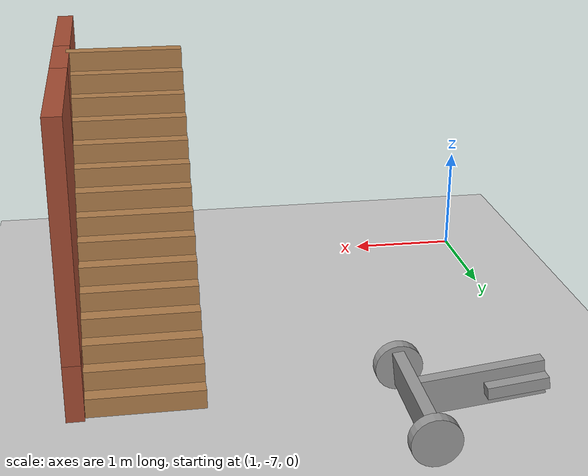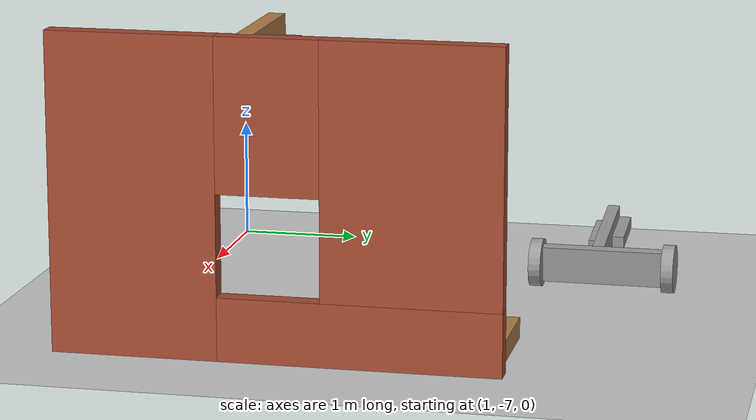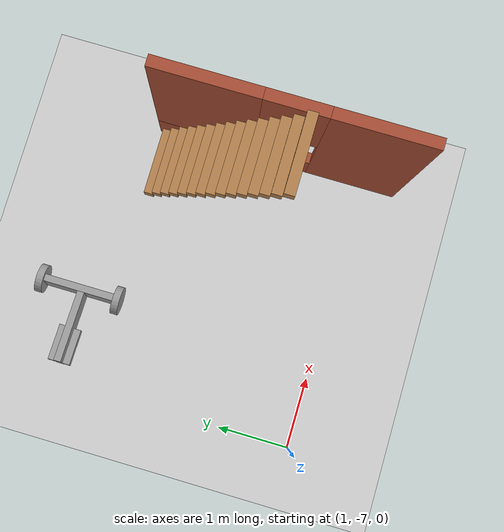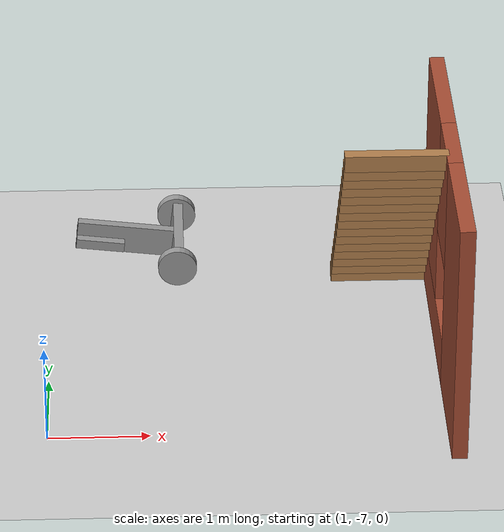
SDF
<sdf version="1.6">
 <world name="default">
  <model name="ground_plane">
   <static>1</static>
   <link name="link">
    <collision name="collision">
     <geometry><plane><normal>0 0 1</normal><size>100 100</size></plane></geometry>
     <surface>
      <contact><collide_bitmask>65535</collide_bitmask></contact>
      <friction><ode><mu>100</mu><mu2>50</mu2></ode></friction>
     </surface>
    </collision>
    <visual name="visual">
     <cast_shadows>0</cast_shadows>
     <geometry><plane><normal>0 0 1</normal><size>100 100</size></plane></geometry>
     <material>
      <script><uri>file://media/materials/scripts/gazebo.material</uri><name>Gazebo/Grey</name></script>
     </material>
    </visual>
   </link>
  </model>
  <model name="Building">
   <link name="Stairs_1">
    <pose>0.046334 -2.64714 0 0 -0 0</pose>
    <visual name="Stairs_1_Visual_3">
     <pose>3.95843 -0.779973 0.583333 0 -0 0</pose>
     <geometry><box><size>1 0.133333 0.166667</size></box></geometry>
     <material>
      <script><uri>file://media/materials/scripts/gazebo.material</uri><name>Gazebo/Wood</name></script>
      <ambient>1 1 1 1</ambient>
      <shader type="pixel"/>
      <diffuse>1 1 1 1</diffuse>
      <specular>0.2 0.2 0.2 1</specular>
      <emissive>0 0 0 1</emissive>
     </material>
     <meta><layer>0</layer></meta>
    </visual>
    <visual name="Stairs_1_Visual_0">
     <pose>3.95843 -0.379973 0.083333 0 -0 0</pose>
     <geometry><box><size>1 0.133333 0.166667</size></box></geometry>
     <material>
      <script><uri>file://media/materials/scripts/gazebo.material</uri><name>Gazebo/Wood</name></script>
      <ambient>1 1 1 1</ambient>
      <shader type="pixel"/>
      <diffuse>1 1 1 1</diffuse>
      <specular>0.2 0.2 0.2 1</specular>
      <emissive>0 0 0 1</emissive>
     </material>
     <meta><layer>0</layer></meta>
    </visual>
    <visual name="Stairs_1_Visual_4">
     <pose>3.95843 -0.913306 0.75 0 -0 0</pose>
     <geometry><box><size>1 0.133333 0.166667</size></box></geometry>
     <material>
      <script><uri>file://media/materials/scripts/gazebo.material</uri><name>Gazebo/Wood</name></script>
      <ambient>1 1 1 1</ambient>
      <shader type="pixel"/>
      <diffuse>1 1 1 1</diffuse>
      <specular>0.2 0.2 0.2 1</specular>
      <emissive>0 0 0 1</emissive>
     </material>
     <meta><layer>0</layer></meta>
    </visual>
    <visual name="Stairs_1_Visual_2">
     <pose>3.95843 -0.646639 0.416667 0 -0 0</pose>
     <geometry><box><size>1 0.133333 0.166667</size></box></geometry>
     <material>
      <script><uri>file://media/materials/scripts/gazebo.material</uri><name>Gazebo/Wood</name></script>
      <ambient>1 1 1 1</ambient>
      <shader type="pixel"/>
      <diffuse>1 1 1 1</diffuse>
      <specular>0.2 0.2 0.2 1</specular>
      <emissive>0 0 0 1</emissive>
     </material>
     <meta><layer>0</layer></meta>
    </visual>
    <visual name="Stairs_1_Visual_5">
     <pose>3.95843 -1.04664 0.916667 0 -0 0</pose>
     <geometry><box><size>1 0.133333 0.166667</size></box></geometry>
     <material>
      <script><uri>file://media/materials/scripts/gazebo.material</uri><name>Gazebo/Wood</name></script>
      <ambient>1 1 1 1</ambient>
      <shader type="pixel"/>
      <diffuse>1 1 1 1</diffuse>
      <specular>0.2 0.2 0.2 1</specular>
      <emissive>0 0 0 1</emissive>
     </material>
     <meta><layer>0</layer></meta>
    </visual>
    <visual name="Stairs_1_Visual_6">
     <pose>3.95843 -1.17997 1.08333 0 -0 0</pose>
     <geometry><box><size>1 0.133333 0.166667</size></box></geometry>
     <material>
      <script><uri>file://media/materials/scripts/gazebo.material</uri><name>Gazebo/Wood</name></script>
      <ambient>1 1 1 1</ambient>
      <shader type="pixel"/>
      <diffuse>1 1 1 1</diffuse>
      <specular>0.2 0.2 0.2 1</specular>
      <emissive>0 0 0 1</emissive>
     </material>
     <meta><layer>0</layer></meta>
    </visual>
    <visual name="Stairs_1_Visual_7">
     <pose>3.95843 -1.31331 1.25 0 -0 0</pose>
     <geometry><box><size>1 0.133333 0.166667</size></box></geometry>
     <material>
      <script><uri>file://media/materials/scripts/gazebo.material</uri><name>Gazebo/Wood</name></script>
      <ambient>1 1 1 1</ambient>
      <shader type="pixel"/>
      <diffuse>1 1 1 1</diffuse>
      <specular>0.2 0.2 0.2 1</specular>
      <emissive>0 0 0 1</emissive>
     </material>
     <meta><layer>0</layer></meta>
    </visual>
    <visual name="Stairs_1_Visual_12">
     <pose>3.95843 -1.97997 2.08333 0 -0 0</pose>
     <geometry><box><size>1 0.133333 0.166667</size></box></geometry>
     <material>
      <script><uri>file://media/materials/scripts/gazebo.material</uri><name>Gazebo/Wood</name></script>
      <ambient>1 1 1 1</ambient>
      <shader type="pixel"/>
      <diffuse>1 1 1 1</diffuse>
      <specular>0.2 0.2 0.2 1</specular>
      <emissive>0 0 0 1</emissive>
     </material>
     <meta><layer>0</layer></meta>
    </visual>
    <visual name="Stairs_1_Visual_13">
     <pose>3.95843 -2.11331 2.25 0 -0 0</pose>
     <geometry><box><size>1 0.133333 0.166667</size></box></geometry>
     <material>
      <script><uri>file://media/materials/scripts/gazebo.material</uri><name>Gazebo/Wood</name></script>
      <ambient>1 1 1 1</ambient>
      <shader type="pixel"/>
      <diffuse>1 1 1 1</diffuse>
      <specular>0.2 0.2 0.2 1</specular>
      <emissive>0 0 0 1</emissive>
     </material>
     <meta><layer>0</layer></meta>
    </visual>
    <visual name="Stairs_1_Visual_14">
     <pose>3.95843 -2.24664 2.41667 0 -0 0</pose>
     <geometry><box><size>1 0.133333 0.166667</size></box></geometry>
     <material>
      <script><uri>file://media/materials/scripts/gazebo.material</uri><name>Gazebo/Wood</name></script>
      <ambient>1 1 1 1</ambient>
      <shader type="pixel"/>
      <diffuse>1 1 1 1</diffuse>
      <specular>0.2 0.2 0.2 1</specular>
      <emissive>0 0 0 1</emissive>
     </material>
     <meta><layer>0</layer></meta>
    </visual>
    <visual name="Stairs_1_Visual_8">
     <pose>3.95843 -1.44664 1.41667 0 -0 0</pose>
     <geometry><box><size>1 0.133333 0.166667</size></box></geometry>
     <material>
      <script><uri>file://media/materials/scripts/gazebo.material</uri><name>Gazebo/Wood</name></script>
      <ambient>1 1 1 1</ambient>
      <shader type="pixel"/>
      <diffuse>1 1 1 1</diffuse>
      <specular>0.2 0.2 0.2 1</specular>
      <emissive>0 0 0 1</emissive>
     </material>
     <meta><layer>0</layer></meta>
    </visual>
    <visual name="Stairs_1_Visual_9">
     <pose>3.95843 -1.57997 1.58333 0 -0 0</pose>
     <geometry><box><size>1 0.133333 0.166667</size></box></geometry>
     <material>
      <script><uri>file://media/materials/scripts/gazebo.material</uri><name>Gazebo/Wood</name></script>
      <ambient>1 1 1 1</ambient>
      <shader type="pixel"/>
      <diffuse>1 1 1 1</diffuse>
      <specular>0.2 0.2 0.2 1</specular>
      <emissive>0 0 0 1</emissive>
     </material>
     <meta><layer>0</layer></meta>
    </visual>
    <visual name="Stairs_1_Visual_10">
     <pose>3.95843 -1.71331 1.75 0 -0 0</pose>
     <geometry><box><size>1 0.133333 0.166667</size></box></geometry>
     <material>
      <script><uri>file://media/materials/scripts/gazebo.material</uri><name>Gazebo/Wood</name></script>
      <ambient>1 1 1 1</ambient>
      <shader type="pixel"/>
      <diffuse>1 1 1 1</diffuse>
      <specular>0.2 0.2 0.2 1</specular>
      <emissive>0 0 0 1</emissive>
     </material>
     <meta><layer>0</layer></meta>
    </visual>
    <visual name="Stairs_1_Visual_11">
     <pose>3.95843 -1.84664 1.91667 0 -0 0</pose>
     <geometry><box><size>1 0.133333 0.166667</size></box></geometry>
     <material>
      <script><uri>file://media/materials/scripts/gazebo.material</uri><name>Gazebo/Wood</name></script>
      <ambient>1 1 1 1</ambient>
      <shader type="pixel"/>
      <diffuse>1 1 1 1</diffuse>
      <specular>0.2 0.2 0.2 1</specular>
      <emissive>0 0 0 1</emissive>
     </material>
     <meta><layer>0</layer></meta>
    </visual>
    <visual name="Stairs_1_Visual_1">
     <pose>3.95843 -0.513306 0.25 0 -0 0</pose>
     <geometry><box><size>1 0.133333 0.166667</size></box></geometry>
     <material>
      <script><uri>file://media/materials/scripts/gazebo.material</uri><name>Gazebo/Wood</name></script>
      <ambient>1 1 1 1</ambient>
      <shader type="pixel"/>
      <diffuse>1 1 1 1</diffuse>
      <specular>0.2 0.2 0.2 1</specular>
      <emissive>0 0 0 1</emissive>
     </material>
     <meta><layer>0</layer></meta>
    </visual>
    <collision name="Stairs_1_Collision_4">
     <pose>3.95843 -0.913306 0.75 0 -0 0</pose>
     <geometry><box><size>1 0.133333 0.166667</size></box></geometry>
     <surface>
      <friction>
       <ode><mu>1</mu><mu2>1</mu2><fdir1>0 0 0</fdir1><slip1>0</slip1><slip2>0</slip2></ode>
       <torsional>
        <coefficient>1</coefficient>
        <patch_radius>0</patch_radius>
        <surface_radius>0</surface_radius>
        <use_patch_radius>1</use_patch_radius>
        <ode><slip>0</slip></ode>
       </torsional>
      </friction>
      <bounce><restitution_coefficient>0</restitution_coefficient><threshold>1e+06</threshold></bounce>
      <contact>
       <collide_without_contact>0</collide_without_contact>
       <collide_without_contact_bitmask>1</collide_without_contact_bitmask>
       <collide_bitmask>1</collide_bitmask>
       <ode>
        <soft_cfm>0</soft_cfm>
        <soft_erp>0.2</soft_erp>
        <kp>1e+13</kp>
        <kd>1</kd>
        <max_vel>0.01</max_vel>
        <min_depth>0</min_depth>
       </ode>
       <bullet>
        <split_impulse>1</split_impulse>
        <split_impulse_penetration_threshold>-0.01</split_impulse_penetration_threshold>
        <soft_cfm>0</soft_cfm>
        <soft_erp>0.2</soft_erp>
        <kp>1e+13</kp>
        <kd>1</kd>
       </bullet>
      </contact>
     </surface>
    </collision>
    <collision name="Stairs_1_Collision_0">
     <pose>3.95843 -0.379973 0.083333 0 -0 0</pose>
     <geometry><box><size>1 0.133333 0.166667</size></box></geometry>
     <surface>
      <friction>
       <ode><mu>1</mu><mu2>1</mu2><fdir1>0 0 0</fdir1><slip1>0</slip1><slip2>0</slip2></ode>
       <torsional>
        <coefficient>1</coefficient>
        <patch_radius>0</patch_radius>
        <surface_radius>0</surface_radius>
        <use_patch_radius>1</use_patch_radius>
        <ode><slip>0</slip></ode>
       </torsional>
      </friction>
      <bounce><restitution_coefficient>0</restitution_coefficient><threshold>1e+06</threshold></bounce>
      <contact>
       <collide_without_contact>0</collide_without_contact>
       <collide_without_contact_bitmask>1</collide_without_contact_bitmask>
       <collide_bitmask>1</collide_bitmask>
       <ode>
        <soft_cfm>0</soft_cfm>
        <soft_erp>0.2</soft_erp>
        <kp>1e+13</kp>
        <kd>1</kd>
        <max_vel>0.01</max_vel>
        <min_depth>0</min_depth>
       </ode>
       <bullet>
        <split_impulse>1</split_impulse>
        <split_impulse_penetration_threshold>-0.01</split_impulse_penetration_threshold>
        <soft_cfm>0</soft_cfm>
        <soft_erp>0.2</soft_erp>
        <kp>1e+13</kp>
        <kd>1</kd>
       </bullet>
      </contact>
     </surface>
    </collision>
    <collision name="Stairs_1_Collision_3">
     <pose>3.95843 -0.779973 0.583333 0 -0 0</pose>
     <geometry><box><size>1 0.133333 0.166667</size></box></geometry>
     <surface>
      <friction>
       <ode><mu>1</mu><mu2>1</mu2><fdir1>0 0 0</fdir1><slip1>0</slip1><slip2>0</slip2></ode>
       <torsional>
        <coefficient>1</coefficient>
        <patch_radius>0</patch_radius>
        <surface_radius>0</surface_radius>
        <use_patch_radius>1</use_patch_radius>
        <ode><slip>0</slip></ode>
       </torsional>
      </friction>
      <bounce><restitution_coefficient>0</restitution_coefficient><threshold>1e+06</threshold></bounce>
      <contact>
       <collide_without_contact>0</collide_without_contact>
       <collide_without_contact_bitmask>1</collide_without_contact_bitmask>
       <collide_bitmask>1</collide_bitmask>
       <ode>
        <soft_cfm>0</soft_cfm>
        <soft_erp>0.2</soft_erp>
        <kp>1e+13</kp>
        <kd>1</kd>
        <max_vel>0.01</max_vel>
        <min_depth>0</min_depth>
       </ode>
       <bullet>
        <split_impulse>1</split_impulse>
        <split_impulse_penetration_threshold>-0.01</split_impulse_penetration_threshold>
        <soft_cfm>0</soft_cfm>
        <soft_erp>0.2</soft_erp>
        <kp>1e+13</kp>
        <kd>1</kd>
       </bullet>
      </contact>
     </surface>
    </collision>
    <collision name="Stairs_1_Collision_1">
     <pose>3.95843 -0.513306 0.25 0 -0 0</pose>
     <geometry><box><size>1 0.133333 0.166667</size></box></geometry>
     <surface>
      <friction>
       <ode><mu>1</mu><mu2>1</mu2><fdir1>0 0 0</fdir1><slip1>0</slip1><slip2>0</slip2></ode>
       <torsional>
        <coefficient>1</coefficient>
        <patch_radius>0</patch_radius>
        <surface_radius>0</surface_radius>
        <use_patch_radius>1</use_patch_radius>
        <ode><slip>0</slip></ode>
       </torsional>
      </friction>
      <bounce><restitution_coefficient>0</restitution_coefficient><threshold>1e+06</threshold></bounce>
      <contact>
       <collide_without_contact>0</collide_without_contact>
       <collide_without_contact_bitmask>1</collide_without_contact_bitmask>
       <collide_bitmask>1</collide_bitmask>
       <ode>
        <soft_cfm>0</soft_cfm>
        <soft_erp>0.2</soft_erp>
        <kp>1e+13</kp>
        <kd>1</kd>
        <max_vel>0.01</max_vel>
        <min_depth>0</min_depth>
       </ode>
       <bullet>
        <split_impulse>1</split_impulse>
        <split_impulse_penetration_threshold>-0.01</split_impulse_penetration_threshold>
        <soft_cfm>0</soft_cfm>
        <soft_erp>0.2</soft_erp>
        <kp>1e+13</kp>
        <kd>1</kd>
       </bullet>
      </contact>
     </surface>
    </collision>
    <collision name="Stairs_1_Collision_2">
     <pose>3.95843 -0.646639 0.416667 0 -0 0</pose>
     <geometry><box><size>1 0.133333 0.166667</size></box></geometry>
     <surface>
      <friction>
       <ode><mu>1</mu><mu2>1</mu2><fdir1>0 0 0</fdir1><slip1>0</slip1><slip2>0</slip2></ode>
       <torsional>
        <coefficient>1</coefficient>
        <patch_radius>0</patch_radius>
        <surface_radius>0</surface_radius>
        <use_patch_radius>1</use_patch_radius>
        <ode><slip>0</slip></ode>
       </torsional>
      </friction>
      <bounce><restitution_coefficient>0</restitution_coefficient><threshold>1e+06</threshold></bounce>
      <contact>
       <collide_without_contact>0</collide_without_contact>
       <collide_without_contact_bitmask>1</collide_without_contact_bitmask>
       <collide_bitmask>1</collide_bitmask>
       <ode>
        <soft_cfm>0</soft_cfm>
        <soft_erp>0.2</soft_erp>
        <kp>1e+13</kp>
        <kd>1</kd>
        <max_vel>0.01</max_vel>
        <min_depth>0</min_depth>
       </ode>
       <bullet>
        <split_impulse>1</split_impulse>
        <split_impulse_penetration_threshold>-0.01</split_impulse_penetration_threshold>
        <soft_cfm>0</soft_cfm>
        <soft_erp>0.2</soft_erp>
        <kp>1e+13</kp>
        <kd>1</kd>
       </bullet>
      </contact>
     </surface>
    </collision>
    <collision name="Stairs_1_Collision_5">
     <pose>3.95843 -1.04664 0.916667 0 -0 0</pose>
     <geometry><box><size>1 0.133333 0.166667</size></box></geometry>
     <surface>
      <friction>
       <ode><mu>1</mu><mu2>1</mu2><fdir1>0 0 0</fdir1><slip1>0</slip1><slip2>0</slip2></ode>
       <torsional>
        <coefficient>1</coefficient>
        <patch_radius>0</patch_radius>
        <surface_radius>0</surface_radius>
        <use_patch_radius>1</use_patch_radius>
        <ode><slip>0</slip></ode>
       </torsional>
      </friction>
      <bounce><restitution_coefficient>0</restitution_coefficient><threshold>1e+06</threshold></bounce>
      <contact>
       <collide_without_contact>0</collide_without_contact>
       <collide_without_contact_bitmask>1</collide_without_contact_bitmask>
       <collide_bitmask>1</collide_bitmask>
       <ode>
        <soft_cfm>0</soft_cfm>
        <soft_erp>0.2</soft_erp>
        <kp>1e+13</kp>
        <kd>1</kd>
        <max_vel>0.01</max_vel>
        <min_depth>0</min_depth>
       </ode>
       <bullet>
        <split_impulse>1</split_impulse>
        <split_impulse_penetration_threshold>-0.01</split_impulse_penetration_threshold>
        <soft_cfm>0</soft_cfm>
        <soft_erp>0.2</soft_erp>
        <kp>1e+13</kp>
        <kd>1</kd>
       </bullet>
      </contact>
     </surface>
    </collision>
    <collision name="Stairs_1_Collision_6">
     <pose>3.95843 -1.17997 1.08333 0 -0 0</pose>
     <geometry><box><size>1 0.133333 0.166667</size></box></geometry>
     <surface>
      <friction>
       <ode><mu>1</mu><mu2>1</mu2><fdir1>0 0 0</fdir1><slip1>0</slip1><slip2>0</slip2></ode>
       <torsional>
        <coefficient>1</coefficient>
        <patch_radius>0</patch_radius>
        <surface_radius>0</surface_radius>
        <use_patch_radius>1</use_patch_radius>
        <ode><slip>0</slip></ode>
       </torsional>
      </friction>
      <bounce><restitution_coefficient>0</restitution_coefficient><threshold>1e+06</threshold></bounce>
      <contact>
       <collide_without_contact>0</collide_without_contact>
       <collide_without_contact_bitmask>1</collide_without_contact_bitmask>
       <collide_bitmask>1</collide_bitmask>
       <ode>
        <soft_cfm>0</soft_cfm>
        <soft_erp>0.2</soft_erp>
        <kp>1e+13</kp>
        <kd>1</kd>
        <max_vel>0.01</max_vel>
        <min_depth>0</min_depth>
       </ode>
       <bullet>
        <split_impulse>1</split_impulse>
        <split_impulse_penetration_threshold>-0.01</split_impulse_penetration_threshold>
        <soft_cfm>0</soft_cfm>
        <soft_erp>0.2</soft_erp>
        <kp>1e+13</kp>
        <kd>1</kd>
       </bullet>
      </contact>
     </surface>
    </collision>
    <collision name="Stairs_1_Collision_7">
     <pose>3.95843 -1.31331 1.25 0 -0 0</pose>
     <geometry><box><size>1 0.133333 0.166667</size></box></geometry>
     <surface>
      <friction>
       <ode><mu>1</mu><mu2>1</mu2><fdir1>0 0 0</fdir1><slip1>0</slip1><slip2>0</slip2></ode>
       <torsional>
        <coefficient>1</coefficient>
        <patch_radius>0</patch_radius>
        <surface_radius>0</surface_radius>
        <use_patch_radius>1</use_patch_radius>
        <ode><slip>0</slip></ode>
       </torsional>
      </friction>
      <bounce><restitution_coefficient>0</restitution_coefficient><threshold>1e+06</threshold></bounce>
      <contact>
       <collide_without_contact>0</collide_without_contact>
       <collide_without_contact_bitmask>1</collide_without_contact_bitmask>
       <collide_bitmask>1</collide_bitmask>
       <ode>
        <soft_cfm>0</soft_cfm>
        <soft_erp>0.2</soft_erp>
        <kp>1e+13</kp>
        <kd>1</kd>
        <max_vel>0.01</max_vel>
        <min_depth>0</min_depth>
       </ode>
       <bullet>
        <split_impulse>1</split_impulse>
        <split_impulse_penetration_threshold>-0.01</split_impulse_penetration_threshold>
        <soft_cfm>0</soft_cfm>
        <soft_erp>0.2</soft_erp>
        <kp>1e+13</kp>
        <kd>1</kd>
       </bullet>
      </contact>
     </surface>
    </collision>
    <collision name="Stairs_1_Collision_8">
     <pose>3.95843 -1.44664 1.41667 0 -0 0</pose>
     <geometry><box><size>1 0.133333 0.166667</size></box></geometry>
     <surface>
      <friction>
       <ode><mu>1</mu><mu2>1</mu2><fdir1>0 0 0</fdir1><slip1>0</slip1><slip2>0</slip2></ode>
       <torsional>
        <coefficient>1</coefficient>
        <patch_radius>0</patch_radius>
        <surface_radius>0</surface_radius>
        <use_patch_radius>1</use_patch_radius>
        <ode><slip>0</slip></ode>
       </torsional>
      </friction>
      <bounce><restitution_coefficient>0</restitution_coefficient><threshold>1e+06</threshold></bounce>
      <contact>
       <collide_without_contact>0</collide_without_contact>
       <collide_without_contact_bitmask>1</collide_without_contact_bitmask>
       <collide_bitmask>1</collide_bitmask>
       <ode>
        <soft_cfm>0</soft_cfm>
        <soft_erp>0.2</soft_erp>
        <kp>1e+13</kp>
        <kd>1</kd>
        <max_vel>0.01</max_vel>
        <min_depth>0</min_depth>
       </ode>
       <bullet>
        <split_impulse>1</split_impulse>
        <split_impulse_penetration_threshold>-0.01</split_impulse_penetration_threshold>
        <soft_cfm>0</soft_cfm>
        <soft_erp>0.2</soft_erp>
        <kp>1e+13</kp>
        <kd>1</kd>
       </bullet>
      </contact>
     </surface>
    </collision>
    <collision name="Stairs_1_Collision_9">
     <pose>3.95843 -1.57997 1.58333 0 -0 0</pose>
     <geometry><box><size>1 0.133333 0.166667</size></box></geometry>
     <surface>
      <friction>
       <ode><mu>1</mu><mu2>1</mu2><fdir1>0 0 0</fdir1><slip1>0</slip1><slip2>0</slip2></ode>
       <torsional>
        <coefficient>1</coefficient>
        <patch_radius>0</patch_radius>
        <surface_radius>0</surface_radius>
        <use_patch_radius>1</use_patch_radius>
        <ode><slip>0</slip></ode>
       </torsional>
      </friction>
      <bounce><restitution_coefficient>0</restitution_coefficient><threshold>1e+06</threshold></bounce>
      <contact>
       <collide_without_contact>0</collide_without_contact>
       <collide_without_contact_bitmask>1</collide_without_contact_bitmask>
       <collide_bitmask>1</collide_bitmask>
       <ode>
        <soft_cfm>0</soft_cfm>
        <soft_erp>0.2</soft_erp>
        <kp>1e+13</kp>
        <kd>1</kd>
        <max_vel>0.01</max_vel>
        <min_depth>0</min_depth>
       </ode>
       <bullet>
        <split_impulse>1</split_impulse>
        <split_impulse_penetration_threshold>-0.01</split_impulse_penetration_threshold>
        <soft_cfm>0</soft_cfm>
        <soft_erp>0.2</soft_erp>
        <kp>1e+13</kp>
        <kd>1</kd>
       </bullet>
      </contact>
     </surface>
    </collision>
    <collision name="Stairs_1_Collision_10">
     <pose>3.95843 -1.71331 1.75 0 -0 0</pose>
     <geometry><box><size>1 0.133333 0.166667</size></box></geometry>
     <surface>
      <friction>
       <ode><mu>1</mu><mu2>1</mu2><fdir1>0 0 0</fdir1><slip1>0</slip1><slip2>0</slip2></ode>
       <torsional>
        <coefficient>1</coefficient>
        <patch_radius>0</patch_radius>
        <surface_radius>0</surface_radius>
        <use_patch_radius>1</use_patch_radius>
        <ode><slip>0</slip></ode>
       </torsional>
      </friction>
      <bounce><restitution_coefficient>0</restitution_coefficient><threshold>1e+06</threshold></bounce>
      <contact>
       <collide_without_contact>0</collide_without_contact>
       <collide_without_contact_bitmask>1</collide_without_contact_bitmask>
       <collide_bitmask>1</collide_bitmask>
       <ode>
        <soft_cfm>0</soft_cfm>
        <soft_erp>0.2</soft_erp>
        <kp>1e+13</kp>
        <kd>1</kd>
        <max_vel>0.01</max_vel>
        <min_depth>0</min_depth>
       </ode>
       <bullet>
        <split_impulse>1</split_impulse>
        <split_impulse_penetration_threshold>-0.01</split_impulse_penetration_threshold>
        <soft_cfm>0</soft_cfm>
        <soft_erp>0.2</soft_erp>
        <kp>1e+13</kp>
        <kd>1</kd>
       </bullet>
      </contact>
     </surface>
    </collision>
    <collision name="Stairs_1_Collision_11">
     <pose>3.95843 -1.84664 1.91667 0 -0 0</pose>
     <geometry><box><size>1 0.133333 0.166667</size></box></geometry>
     <surface>
      <friction>
       <ode><mu>1</mu><mu2>1</mu2><fdir1>0 0 0</fdir1><slip1>0</slip1><slip2>0</slip2></ode>
       <torsional>
        <coefficient>1</coefficient>
        <patch_radius>0</patch_radius>
        <surface_radius>0</surface_radius>
        <use_patch_radius>1</use_patch_radius>
        <ode><slip>0</slip></ode>
       </torsional>
      </friction>
      <bounce><restitution_coefficient>0</restitution_coefficient><threshold>1e+06</threshold></bounce>
      <contact>
       <collide_without_contact>0</collide_without_contact>
       <collide_without_contact_bitmask>1</collide_without_contact_bitmask>
       <collide_bitmask>1</collide_bitmask>
       <ode>
        <soft_cfm>0</soft_cfm>
        <soft_erp>0.2</soft_erp>
        <kp>1e+13</kp>
        <kd>1</kd>
        <max_vel>0.01</max_vel>
        <min_depth>0</min_depth>
       </ode>
       <bullet>
        <split_impulse>1</split_impulse>
        <split_impulse_penetration_threshold>-0.01</split_impulse_penetration_threshold>
        <soft_cfm>0</soft_cfm>
        <soft_erp>0.2</soft_erp>
        <kp>1e+13</kp>
        <kd>1</kd>
       </bullet>
      </contact>
     </surface>
    </collision>
    <collision name="Stairs_1_Collision_13">
     <pose>3.95843 -2.11331 2.25 0 -0 0</pose>
     <geometry><box><size>1 0.133333 0.166667</size></box></geometry>
     <surface>
      <friction>
       <ode><mu>1</mu><mu2>1</mu2><fdir1>0 0 0</fdir1><slip1>0</slip1><slip2>0</slip2></ode>
       <torsional>
        <coefficient>1</coefficient>
        <patch_radius>0</patch_radius>
        <surface_radius>0</surface_radius>
        <use_patch_radius>1</use_patch_radius>
        <ode><slip>0</slip></ode>
       </torsional>
      </friction>
      <bounce><restitution_coefficient>0</restitution_coefficient><threshold>1e+06</threshold></bounce>
      <contact>
       <collide_without_contact>0</collide_without_contact>
       <collide_without_contact_bitmask>1</collide_without_contact_bitmask>
       <collide_bitmask>1</collide_bitmask>
       <ode>
        <soft_cfm>0</soft_cfm>
        <soft_erp>0.2</soft_erp>
        <kp>1e+13</kp>
        <kd>1</kd>
        <max_vel>0.01</max_vel>
        <min_depth>0</min_depth>
       </ode>
       <bullet>
        <split_impulse>1</split_impulse>
        <split_impulse_penetration_threshold>-0.01</split_impulse_penetration_threshold>
        <soft_cfm>0</soft_cfm>
        <soft_erp>0.2</soft_erp>
        <kp>1e+13</kp>
        <kd>1</kd>
       </bullet>
      </contact>
     </surface>
    </collision>
    <collision name="Stairs_1_Collision_12">
     <pose>3.95843 -1.97997 2.08333 0 -0 0</pose>
     <geometry><box><size>1 0.133333 0.166667</size></box></geometry>
     <surface>
      <friction>
       <ode><mu>1</mu><mu2>1</mu2><fdir1>0 0 0</fdir1><slip1>0</slip1><slip2>0</slip2></ode>
       <torsional>
        <coefficient>1</coefficient>
        <patch_radius>0</patch_radius>
        <surface_radius>0</surface_radius>
        <use_patch_radius>1</use_patch_radius>
        <ode><slip>0</slip></ode>
       </torsional>
      </friction>
      <bounce><restitution_coefficient>0</restitution_coefficient><threshold>1e+06</threshold></bounce>
      <contact>
       <collide_without_contact>0</collide_without_contact>
       <collide_without_contact_bitmask>1</collide_without_contact_bitmask>
       <collide_bitmask>1</collide_bitmask>
       <ode>
        <soft_cfm>0</soft_cfm>
        <soft_erp>0.2</soft_erp>
        <kp>1e+13</kp>
        <kd>1</kd>
        <max_vel>0.01</max_vel>
        <min_depth>0</min_depth>
       </ode>
       <bullet>
        <split_impulse>1</split_impulse>
        <split_impulse_penetration_threshold>-0.01</split_impulse_penetration_threshold>
        <soft_cfm>0</soft_cfm>
        <soft_erp>0.2</soft_erp>
        <kp>1e+13</kp>
        <kd>1</kd>
       </bullet>
      </contact>
     </surface>
    </collision>
    <collision name="Stairs_1_Collision_14">
     <pose>3.95843 -2.24664 2.41667 0 -0 0</pose>
     <geometry><box><size>1 0.133333 0.166667</size></box></geometry>
     <surface>
      <friction>
       <ode><mu>1</mu><mu2>1</mu2><fdir1>0 0 0</fdir1><slip1>0</slip1><slip2>0</slip2></ode>
       <torsional>
        <coefficient>1</coefficient>
        <patch_radius>0</patch_radius>
        <surface_radius>0</surface_radius>
        <use_patch_radius>1</use_patch_radius>
        <ode><slip>0</slip></ode>
       </torsional>
      </friction>
      <bounce><restitution_coefficient>0</restitution_coefficient><threshold>1e+06</threshold></bounce>
      <contact>
       <collide_without_contact>0</collide_without_contact>
       <collide_without_contact_bitmask>1</collide_without_contact_bitmask>
       <collide_bitmask>1</collide_bitmask>
       <ode>
        <soft_cfm>0</soft_cfm>
        <soft_erp>0.2</soft_erp>
        <kp>1e+13</kp>
        <kd>1</kd>
        <max_vel>0.01</max_vel>
        <min_depth>0</min_depth>
       </ode>
       <bullet>
        <split_impulse>1</split_impulse>
        <split_impulse_penetration_threshold>-0.01</split_impulse_penetration_threshold>
        <soft_cfm>0</soft_cfm>
        <soft_erp>0.2</soft_erp>
        <kp>1e+13</kp>
        <kd>1</kd>
       </bullet>
      </contact>
     </surface>
    </collision>
   </link>
   <link name="Wall_2_clone">
    <pose>4.54998 -4.66312 0 0 -0 1.5708</pose>
    <inertial>
     <mass>1</mass>
     <inertia><ixx>1</ixx><ixy>0</ixy><ixz>0</ixz><iyy>1</iyy><iyz>0</iyz><izz>1</izz></inertia>
    </inertial>
    <visual name="Wall_2_Visual_3">
     <pose>-0.03931 0 1.9 0 -0 0</pose>
     <geometry><box><size>0.8 0.15 1.2</size></box></geometry>
     <material>
      <script><uri>file://media/materials/scripts/gazebo.material</uri><name>Gazebo/Bricks</name></script>
      <ambient>1 1 1 1</ambient>
      <shader type="pixel"><normal_map>__default__</normal_map></shader>
      <diffuse>1 1 1 1</diffuse>
      <specular>0.2 0.2 0.2 1</specular>
      <emissive>0 0 0 1</emissive>
     </material>
     <meta><layer>0</layer></meta>
    </visual>
    <visual name="Wall_2_Visual_2">
     <pose>1.05534 0 1.5 0 -0 0</pose>
     <geometry><box><size>1.38931 0.15 2</size></box></geometry>
     <material>
      <script><uri>file://media/materials/scripts/gazebo.material</uri><name>Gazebo/Bricks</name></script>
      <ambient>1 1 1 1</ambient>
      <shader type="pixel"><normal_map>__default__</normal_map></shader>
      <diffuse>1 1 1 1</diffuse>
      <specular>0.2 0.2 0.2 1</specular>
      <emissive>0 0 0 1</emissive>
     </material>
     <meta><layer>0</layer></meta>
    </visual>
    <visual name="Wall_2_Visual_1">
     <pose>0.655345 0 0.25 0 -0 0</pose>
     <geometry><box><size>2.18931 0.15 0.5</size></box></geometry>
     <material>
      <script><uri>file://media/materials/scripts/gazebo.material</uri><name>Gazebo/Bricks</name></script>
      <ambient>1 1 1 1</ambient>
      <shader type="pixel"><normal_map>__default__</normal_map></shader>
      <diffuse>1 1 1 1</diffuse>
      <specular>0.2 0.2 0.2 1</specular>
      <emissive>0 0 0 1</emissive>
     </material>
     <meta><layer>0</layer></meta>
    </visual>
    <visual name="Wall_2_Visual_0">
     <pose>-1.09465 0 1.25 0 -0 0</pose>
     <geometry><box><size>1.31069 0.15 2.5</size></box></geometry>
     <material>
      <script><uri>file://media/materials/scripts/gazebo.material</uri><name>Gazebo/Bricks</name></script>
      <ambient>1 1 1 1</ambient>
      <shader type="pixel"><normal_map>__default__</normal_map></shader>
      <diffuse>1 1 1 1</diffuse>
      <specular>0.2 0.2 0.2 1</specular>
      <emissive>0 0 0 1</emissive>
     </material>
     <meta><layer>0</layer></meta>
    </visual>
    <collision name="Wall_2_Collision_3">
     <pose>-0.03931 0 1.9 0 -0 0</pose>
     <geometry><box><size>0.8 0.15 1.2</size></box></geometry>
     <surface>
      <friction>
       <ode><mu>1</mu><mu2>1</mu2><fdir1>0 0 0</fdir1><slip1>0</slip1><slip2>0</slip2></ode>
       <torsional>
        <coefficient>1</coefficient>
        <patch_radius>0</patch_radius>
        <surface_radius>0</surface_radius>
        <use_patch_radius>1</use_patch_radius>
        <ode><slip>0</slip></ode>
       </torsional>
      </friction>
      <bounce><restitution_coefficient>0</restitution_coefficient><threshold>1e+06</threshold></bounce>
      <contact>
       <collide_without_contact>0</collide_without_contact>
       <collide_without_contact_bitmask>1</collide_without_contact_bitmask>
       <collide_bitmask>1</collide_bitmask>
       <ode>
        <soft_cfm>0</soft_cfm>
        <soft_erp>0.2</soft_erp>
        <kp>1e+13</kp>
        <kd>1</kd>
        <max_vel>0.01</max_vel>
        <min_depth>0</min_depth>
       </ode>
       <bullet>
        <split_impulse>1</split_impulse>
        <split_impulse_penetration_threshold>-0.01</split_impulse_penetration_threshold>
        <soft_cfm>0</soft_cfm>
        <soft_erp>0.2</soft_erp>
        <kp>1e+13</kp>
        <kd>1</kd>
       </bullet>
      </contact>
     </surface>
    </collision>
    <collision name="Wall_2_Collision_1">
     <pose>0.655345 0 0.25 0 -0 0</pose>
     <geometry><box><size>2.18931 0.15 0.5</size></box></geometry>
     <surface>
      <friction>
       <ode><mu>1</mu><mu2>1</mu2><fdir1>0 0 0</fdir1><slip1>0</slip1><slip2>0</slip2></ode>
       <torsional>
        <coefficient>1</coefficient>
        <patch_radius>0</patch_radius>
        <surface_radius>0</surface_radius>
        <use_patch_radius>1</use_patch_radius>
        <ode><slip>0</slip></ode>
       </torsional>
      </friction>
      <bounce><restitution_coefficient>0</restitution_coefficient><threshold>1e+06</threshold></bounce>
      <contact>
       <collide_without_contact>0</collide_without_contact>
       <collide_without_contact_bitmask>1</collide_without_contact_bitmask>
       <collide_bitmask>1</collide_bitmask>
       <ode>
        <soft_cfm>0</soft_cfm>
        <soft_erp>0.2</soft_erp>
        <kp>1e+13</kp>
        <kd>1</kd>
        <max_vel>0.01</max_vel>
        <min_depth>0</min_depth>
       </ode>
       <bullet>
        <split_impulse>1</split_impulse>
        <split_impulse_penetration_threshold>-0.01</split_impulse_penetration_threshold>
        <soft_cfm>0</soft_cfm>
        <soft_erp>0.2</soft_erp>
        <kp>1e+13</kp>
        <kd>1</kd>
       </bullet>
      </contact>
     </surface>
    </collision>
    <collision name="Wall_2_Collision_0">
     <pose>-1.09465 0 1.25 0 -0 0</pose>
     <geometry><box><size>1.31069 0.15 2.5</size></box></geometry>
     <surface>
      <friction>
       <ode><mu>1</mu><mu2>1</mu2><fdir1>0 0 0</fdir1><slip1>0</slip1><slip2>0</slip2></ode>
       <torsional>
        <coefficient>1</coefficient>
        <patch_radius>0</patch_radius>
        <surface_radius>0</surface_radius>
        <use_patch_radius>1</use_patch_radius>
        <ode><slip>0</slip></ode>
       </torsional>
      </friction>
      <bounce><restitution_coefficient>0</restitution_coefficient><threshold>1e+06</threshold></bounce>
      <contact>
       <collide_without_contact>0</collide_without_contact>
       <collide_without_contact_bitmask>1</collide_without_contact_bitmask>
       <collide_bitmask>1</collide_bitmask>
       <ode>
        <soft_cfm>0</soft_cfm>
        <soft_erp>0.2</soft_erp>
        <kp>1e+13</kp>
        <kd>1</kd>
        <max_vel>0.01</max_vel>
        <min_depth>0</min_depth>
       </ode>
       <bullet>
        <split_impulse>1</split_impulse>
        <split_impulse_penetration_threshold>-0.01</split_impulse_penetration_threshold>
        <soft_cfm>0</soft_cfm>
        <soft_erp>0.2</soft_erp>
        <kp>1e+13</kp>
        <kd>1</kd>
       </bullet>
      </contact>
     </surface>
    </collision>
    <collision name="Wall_2_Collision_2">
     <pose>1.05534 0 1.5 0 -0 0</pose>
     <geometry><box><size>1.38931 0.15 2</size></box></geometry>
     <surface>
      <friction>
       <ode><mu>1</mu><mu2>1</mu2><fdir1>0 0 0</fdir1><slip1>0</slip1><slip2>0</slip2></ode>
       <torsional>
        <coefficient>1</coefficient>
        <patch_radius>0</patch_radius>
        <surface_radius>0</surface_radius>
        <use_patch_radius>1</use_patch_radius>
        <ode><slip>0</slip></ode>
       </torsional>
      </friction>
      <bounce><restitution_coefficient>0</restitution_coefficient><threshold>1e+06</threshold></bounce>
      <contact>
       <collide_without_contact>0</collide_without_contact>
       <collide_without_contact_bitmask>1</collide_without_contact_bitmask>
       <collide_bitmask>1</collide_bitmask>
       <ode>
        <soft_cfm>0</soft_cfm>
        <soft_erp>0.2</soft_erp>
        <kp>1e+13</kp>
        <kd>1</kd>
        <max_vel>0.01</max_vel>
        <min_depth>0</min_depth>
       </ode>
       <bullet>
        <split_impulse>1</split_impulse>
        <split_impulse_penetration_threshold>-0.01</split_impulse_penetration_threshold>
        <soft_cfm>0</soft_cfm>
        <soft_erp>0.2</soft_erp>
        <kp>1e+13</kp>
        <kd>1</kd>
       </bullet>
      </contact>
     </surface>
    </collision>
   </link>
   <static>1</static>
   <pose>0.39 -1.08 0 0 -0 0</pose>
  </model>
  <model name="robot_with_arms_0">
   <link name="link_0">
    <inertial>
     <mass>1</mass>
     <inertia>
      <ixx>0.166667</ixx>
      <ixy>0</ixy>
      <ixz>0</ixz>
      <iyy>0.166667</iyy>
      <iyz>0</iyz>
      <izz>0.166667</izz>
     </inertia>
    </inertial>
    <visual name="visual">
     <geometry><box><size>0.3 1 0.1</size></box></geometry>
     <material>
      <lighting>1</lighting>
      <script><uri>file://media/materials/scripts/gazebo.material</uri><name>Gazebo/Grey</name></script>
      <shader type="pixel"><normal_map>__default__</normal_map></shader>
      <ambient>0.3 0.3 0.3 1</ambient>
      <diffuse>0.7 0.7 0.7 1</diffuse>
      <specular>0.01 0.01 0.01 1</specular>
      <emissive>0 0 0 1</emissive>
     </material>
    </visual>
    <visual name="ModelPreview_0::link_0::visual_1">
     <geometry><box><size>0.3 1 0.1</size></box></geometry>
     <material>
      <lighting>1</lighting>
      <script><uri>file://media/materials/scripts/gazebo.material</uri><name>Gazebo/Grey</name></script>
      <shader type="pixel"><normal_map>__default__</normal_map></shader>
      <ambient>0.3 0.3 0.3 1</ambient>
      <diffuse>0.7 0.7 0.7 1</diffuse>
      <specular>0.01 0.01 0.01 1</specular>
      <emissive>0 0 0 1</emissive>
     </material>
    </visual>
    <collision name="collision">
     <geometry><box><size>0.3 1 0.1</size></box></geometry>
     <surface>
      <friction>
       <ode><mu>1</mu><mu2>1</mu2><fdir1>0 0 0</fdir1><slip1>0</slip1><slip2>0</slip2></ode>
       <torsional>
        <coefficient>1</coefficient>
        <patch_radius>0</patch_radius>
        <surface_radius>0</surface_radius>
        <use_patch_radius>1</use_patch_radius>
        <ode><slip>0</slip></ode>
       </torsional>
      </friction>
      <bounce><restitution_coefficient>0</restitution_coefficient><threshold>1e+06</threshold></bounce>
      <contact>
       <collide_without_contact>0</collide_without_contact>
       <collide_without_contact_bitmask>1</collide_without_contact_bitmask>
       <collide_bitmask>1</collide_bitmask>
       <ode>
        <soft_cfm>0</soft_cfm>
        <soft_erp>0.2</soft_erp>
        <kp>1e+13</kp>
        <kd>1</kd>
        <max_vel>0.01</max_vel>
        <min_depth>0</min_depth>
       </ode>
       <bullet>
        <split_impulse>1</split_impulse>
        <split_impulse_penetration_threshold>-0.01</split_impulse_penetration_threshold>
        <soft_cfm>0</soft_cfm>
        <soft_erp>0.2</soft_erp>
        <kp>1e+13</kp>
        <kd>1</kd>
       </bullet>
      </contact>
     </surface>
    </collision>
   </link>
   <link name="link_0_0">
    <pose>-0 -0.045 0.55 0 -0 0</pose>
    <inertial>
     <mass>1</mass>
     <inertia>
      <ixx>0.166667</ixx>
      <ixy>0</ixy>
      <ixz>0</ixz>
      <iyy>0.166667</iyy>
      <iyz>0</iyz>
      <izz>0.166667</izz>
     </inertia>
    </inertial>
    <visual name="visual">
     <geometry><box><size>0.3 0.1 1</size></box></geometry>
     <material>
      <lighting>1</lighting>
      <script><uri>file://media/materials/scripts/gazebo.material</uri><name>Gazebo/Grey</name></script>
      <shader type="pixel"><normal_map>__default__</normal_map></shader>
      <ambient>0.3 0.3 0.3 1</ambient>
      <diffuse>0.7 0.7 0.7 1</diffuse>
      <specular>0.01 0.01 0.01 1</specular>
      <emissive>0 0 0 1</emissive>
     </material>
    </visual>
    <collision name="collision">
     <geometry><box><size>0.3 0.1 1</size></box></geometry>
     <surface>
      <friction>
       <ode><mu>1</mu><mu2>1</mu2><fdir1>0 0 0</fdir1><slip1>0</slip1><slip2>0</slip2></ode>
       <torsional>
        <coefficient>1</coefficient>
        <patch_radius>0</patch_radius>
        <surface_radius>0</surface_radius>
        <use_patch_radius>1</use_patch_radius>
        <ode><slip>0</slip></ode>
       </torsional>
      </friction>
      <bounce><restitution_coefficient>0</restitution_coefficient><threshold>1e+06</threshold></bounce>
      <contact>
       <collide_without_contact>0</collide_without_contact>
       <collide_without_contact_bitmask>1</collide_without_contact_bitmask>
       <collide_bitmask>1</collide_bitmask>
       <ode>
        <soft_cfm>0</soft_cfm>
        <soft_erp>0.2</soft_erp>
        <kp>1e+13</kp>
        <kd>1</kd>
        <max_vel>0.01</max_vel>
        <min_depth>0</min_depth>
       </ode>
       <bullet>
        <split_impulse>1</split_impulse>
        <split_impulse_penetration_threshold>-0.01</split_impulse_penetration_threshold>
        <soft_cfm>0</soft_cfm>
        <soft_erp>0.2</soft_erp>
        <kp>1e+13</kp>
        <kd>1</kd>
       </bullet>
      </contact>
     </surface>
    </collision>
   </link>
   <link name="link_1">
    <pose>0 -0.550019 -0 1.5707 -0 0</pose>
    <inertial>
     <mass>1</mass>
     <inertia><ixx>0.145833</ixx><ixy>0</ixy><ixz>0</ixz><iyy>0.145833</iyy><iyz>0</iyz><izz>0.125</izz></inertia>
    </inertial>
    <visual name="visual">
     <geometry><cylinder><radius>0.2</radius><length>0.1</length></cylinder></geometry>
     <material>
      <lighting>1</lighting>
      <script><uri>file://media/materials/scripts/gazebo.material</uri><name>Gazebo/Grey</name></script>
      <shader type="pixel"><normal_map>__default__</normal_map></shader>
      <ambient>0.3 0.3 0.3 1</ambient>
      <diffuse>0.7 0.7 0.7 1</diffuse>
      <specular>0.01 0.01 0.01 1</specular>
      <emissive>0 0 0 1</emissive>
     </material>
    </visual>
    <collision name="collision">
     <geometry><cylinder><radius>0.2</radius><length>0.1</length></cylinder></geometry>
     <surface>
      <friction>
       <ode><mu>1</mu><mu2>1</mu2><fdir1>0 0 0</fdir1><slip1>0</slip1><slip2>0</slip2></ode>
       <torsional>
        <coefficient>1</coefficient>
        <patch_radius>0</patch_radius>
        <surface_radius>0</surface_radius>
        <use_patch_radius>1</use_patch_radius>
        <ode><slip>0</slip></ode>
       </torsional>
      </friction>
      <bounce><restitution_coefficient>0</restitution_coefficient><threshold>1e+06</threshold></bounce>
      <contact>
       <collide_without_contact>0</collide_without_contact>
       <collide_without_contact_bitmask>1</collide_without_contact_bitmask>
       <collide_bitmask>1</collide_bitmask>
       <ode>
        <soft_cfm>0</soft_cfm>
        <soft_erp>0.2</soft_erp>
        <kp>1e+13</kp>
        <kd>1</kd>
        <max_vel>0.01</max_vel>
        <min_depth>0</min_depth>
       </ode>
       <bullet>
        <split_impulse>1</split_impulse>
        <split_impulse_penetration_threshold>-0.01</split_impulse_penetration_threshold>
        <soft_cfm>0</soft_cfm>
        <soft_erp>0.2</soft_erp>
        <kp>1e+13</kp>
        <kd>1</kd>
       </bullet>
      </contact>
     </surface>
    </collision>
   </link>
   <link name="link_1_0">
    <pose>-0.045 -0.145 0.8 0 -0 0</pose>
    <inertial>
     <mass>1</mass>
     <inertia>
      <ixx>0.166667</ixx>
      <ixy>0</ixy>
      <ixz>0</ixz>
      <iyy>0.166667</iyy>
      <iyz>0</iyz>
      <izz>0.166667</izz>
     </inertia>
    </inertial>
    <visual name="visual">
     <geometry><box><size>0.1 0.1 0.5</size></box></geometry>
     <material>
      <lighting>1</lighting>
      <script><uri>file://media/materials/scripts/gazebo.material</uri><name>Gazebo/Grey</name></script>
      <shader type="pixel"><normal_map>__default__</normal_map></shader>
      <ambient>0.3 0.3 0.3 1</ambient>
      <diffuse>0.7 0.7 0.7 1</diffuse>
      <specular>0.01 0.01 0.01 1</specular>
      <emissive>0 0 0 1</emissive>
     </material>
    </visual>
    <collision name="collision">
     <geometry><box><size>0.1 0.1 0.5</size></box></geometry>
     <surface>
      <friction>
       <ode><mu>1</mu><mu2>1</mu2><fdir1>0 0 0</fdir1><slip1>0</slip1><slip2>0</slip2></ode>
       <torsional>
        <coefficient>1</coefficient>
        <patch_radius>0</patch_radius>
        <surface_radius>0</surface_radius>
        <use_patch_radius>1</use_patch_radius>
        <ode><slip>0</slip></ode>
       </torsional>
      </friction>
      <bounce><restitution_coefficient>0</restitution_coefficient><threshold>1e+06</threshold></bounce>
      <contact>
       <collide_without_contact>0</collide_without_contact>
       <collide_without_contact_bitmask>1</collide_without_contact_bitmask>
       <collide_bitmask>1</collide_bitmask>
       <ode>
        <soft_cfm>0</soft_cfm>
        <soft_erp>0.2</soft_erp>
        <kp>1e+13</kp>
        <kd>1</kd>
        <max_vel>0.01</max_vel>
        <min_depth>0</min_depth>
       </ode>
       <bullet>
        <split_impulse>1</split_impulse>
        <split_impulse_penetration_threshold>-0.01</split_impulse_penetration_threshold>
        <soft_cfm>0</soft_cfm>
        <soft_erp>0.2</soft_erp>
        <kp>1e+13</kp>
        <kd>1</kd>
       </bullet>
      </contact>
     </surface>
    </collision>
   </link>
   <link name="link_1_0_clone">
    <pose>-0 0.055 0.8 0 -0 0</pose>
    <inertial>
     <mass>1</mass>
     <inertia>
      <ixx>0.166667</ixx>
      <ixy>0</ixy>
      <ixz>0</ixz>
      <iyy>0.166667</iyy>
      <iyz>0</iyz>
      <izz>0.166667</izz>
     </inertia>
    </inertial>
    <visual name="visual_0">
     <geometry><box><size>0.1 0.1 0.5</size></box></geometry>
     <material>
      <lighting>1</lighting>
      <script><uri>file://media/materials/scripts/gazebo.material</uri><name>Gazebo/Grey</name></script>
      <shader type="pixel"><normal_map>__default__</normal_map></shader>
      <ambient>0.3 0.3 0.3 1</ambient>
      <diffuse>0.7 0.7 0.7 1</diffuse>
      <specular>0.01 0.01 0.01 1</specular>
      <emissive>0 0 0 1</emissive>
     </material>
    </visual>
    <collision name="collision">
     <geometry><box><size>0.1 0.1 0.5</size></box></geometry>
     <surface>
      <friction>
       <ode><mu>1</mu><mu2>1</mu2><fdir1>0 0 0</fdir1><slip1>0</slip1><slip2>0</slip2></ode>
       <torsional>
        <coefficient>1</coefficient>
        <patch_radius>0</patch_radius>
        <surface_radius>0</surface_radius>
        <use_patch_radius>1</use_patch_radius>
        <ode><slip>0</slip></ode>
       </torsional>
      </friction>
      <bounce><restitution_coefficient>0</restitution_coefficient><threshold>1e+06</threshold></bounce>
      <contact>
       <collide_without_contact>0</collide_without_contact>
       <collide_without_contact_bitmask>1</collide_without_contact_bitmask>
       <collide_bitmask>1</collide_bitmask>
       <ode>
        <soft_cfm>0</soft_cfm>
        <soft_erp>0.2</soft_erp>
        <kp>1e+13</kp>
        <kd>1</kd>
        <max_vel>0.01</max_vel>
        <min_depth>0</min_depth>
       </ode>
       <bullet>
        <split_impulse>1</split_impulse>
        <split_impulse_penetration_threshold>-0.01</split_impulse_penetration_threshold>
        <soft_cfm>0</soft_cfm>
        <soft_erp>0.2</soft_erp>
        <kp>1e+13</kp>
        <kd>1</kd>
       </bullet>
      </contact>
     </surface>
    </collision>
   </link>
   <link name="link_1_clone">
    <pose>-0 0.550019 0 1.5707 -0 0</pose>
    <inertial>
     <mass>1</mass>
     <inertia><ixx>0.145833</ixx><ixy>0</ixy><ixz>0</ixz><iyy>0.145833</iyy><iyz>0</iyz><izz>0.125</izz></inertia>
    </inertial>
    <visual name="visual">
     <geometry><cylinder><radius>0.2</radius><length>0.1</length></cylinder></geometry>
     <material>
      <lighting>1</lighting>
      <script><uri>file://media/materials/scripts/gazebo.material</uri><name>Gazebo/Grey</name></script>
      <shader type="pixel"><normal_map>__default__</normal_map></shader>
      <ambient>0.3 0.3 0.3 1</ambient>
      <diffuse>0.7 0.7 0.7 1</diffuse>
      <specular>0.01 0.01 0.01 1</specular>
      <emissive>0 0 0 1</emissive>
     </material>
    </visual>
    <collision name="collision">
     <geometry><cylinder><radius>0.2</radius><length>0.1</length></cylinder></geometry>
     <surface>
      <friction>
       <ode><mu>1</mu><mu2>1</mu2><fdir1>0 0 0</fdir1><slip1>0</slip1><slip2>0</slip2></ode>
       <torsional>
        <coefficient>1</coefficient>
        <patch_radius>0</patch_radius>
        <surface_radius>0</surface_radius>
        <use_patch_radius>1</use_patch_radius>
        <ode><slip>0</slip></ode>
       </torsional>
      </friction>
      <bounce><restitution_coefficient>0</restitution_coefficient><threshold>1e+06</threshold></bounce>
      <contact>
       <collide_without_contact>0</collide_without_contact>
       <collide_without_contact_bitmask>1</collide_without_contact_bitmask>
       <collide_bitmask>1</collide_bitmask>
       <ode>
        <soft_cfm>0</soft_cfm>
        <soft_erp>0.2</soft_erp>
        <kp>1e+13</kp>
        <kd>1</kd>
        <max_vel>0.01</max_vel>
        <min_depth>0</min_depth>
       </ode>
       <bullet>
        <split_impulse>1</split_impulse>
        <split_impulse_penetration_threshold>-0.01</split_impulse_penetration_threshold>
        <soft_cfm>0</soft_cfm>
        <soft_erp>0.2</soft_erp>
        <kp>1e+13</kp>
        <kd>1</kd>
       </bullet>
      </contact>
     </surface>
    </collision>
   </link>
   <joint name="link_0_0_JOINT_1" type="revolute">
    <parent>link_0_0</parent>
    <child>link_1_0</child>
    <axis>
     <xyz>0 1 0</xyz>
     <use_parent_model_frame>0</use_parent_model_frame>
     <limit>
      <lower>-1.79769e+308</lower>
      <upper>1.79769e+308</upper>
      <effort>-1</effort>
      <velocity>-1</velocity>
     </limit>
     <dynamics>
      <spring_reference>0</spring_reference>
      <spring_stiffness>0</spring_stiffness>
      <damping>0</damping>
      <friction>0</friction>
     </dynamics>
    </axis>
    <physics>
     <ode><limit><cfm>0</cfm><erp>0.2</erp></limit><suspension><cfm>0</cfm><erp>0.2</erp></suspension></ode>
    </physics>
   </joint>
   <joint name="link_0_0_JOINT_2" type="revolute">
    <parent>link_0_0</parent>
    <child>link_1_0_clone</child>
    <axis>
     <xyz>0 1 0</xyz>
     <use_parent_model_frame>0</use_parent_model_frame>
     <limit>
      <lower>-1.79769e+308</lower>
      <upper>1.79769e+308</upper>
      <effort>-1</effort>
      <velocity>-1</velocity>
     </limit>
     <dynamics>
      <spring_reference>0</spring_reference>
      <spring_stiffness>0</spring_stiffness>
      <damping>0</damping>
      <friction>0</friction>
     </dynamics>
    </axis>
    <physics>
     <ode><limit><cfm>0</cfm><erp>0.2</erp></limit><suspension><cfm>0</cfm><erp>0.2</erp></suspension></ode>
    </physics>
   </joint>
   <joint name="link_0_JOINT_0_0" type="fixed">
    <parent>link_0</parent>
    <child>link_0_0</child>
    <physics>
     <ode><limit><cfm>0</cfm><erp>0.2</erp></limit><suspension><cfm>0</cfm><erp>0.2</erp></suspension></ode>
    </physics>
   </joint>
   <joint name="link_0_JOINT_0" type="revolute">
    <parent>link_0</parent>
    <child>link_1</child>
    <axis>
     <xyz>0 0 1</xyz>
     <use_parent_model_frame>0</use_parent_model_frame>
     <limit>
      <lower>-1.79769e+308</lower>
      <upper>1.79769e+308</upper>
      <effort>-1</effort>
      <velocity>-1</velocity>
     </limit>
     <dynamics>
      <spring_reference>0</spring_reference>
      <spring_stiffness>0</spring_stiffness>
      <damping>0</damping>
      <friction>0</friction>
     </dynamics>
    </axis>
    <physics>
     <ode><limit><cfm>0</cfm><erp>0.2</erp></limit><suspension><cfm>0</cfm><erp>0.2</erp></suspension></ode>
    </physics>
   </joint>
   <joint name="link_0_JOINT_1" type="revolute">
    <parent>link_0</parent>
    <child>link_1_clone</child>
    <axis>
     <xyz>0 0 1</xyz>
     <use_parent_model_frame>0</use_parent_model_frame>
     <limit>
      <lower>-1.79769e+308</lower>
      <upper>1.79769e+308</upper>
      <effort>-1</effort>
      <velocity>-1</velocity>
     </limit>
     <dynamics>
      <spring_reference>0</spring_reference>
      <spring_stiffness>0</spring_stiffness>
      <damping>0</damping>
      <friction>0</friction>
     </dynamics>
    </axis>
    <physics>
     <ode><limit><cfm>0</cfm><erp>0.2</erp></limit><suspension><cfm>0</cfm><erp>0.2</erp></suspension></ode>
    </physics>
   </joint>
   <static>0</static>
   <pose>2.3046 -3.59709 0.200001 -0 -1.45216 -0.003388</pose>
  </model>
 </world>
</sdf>
